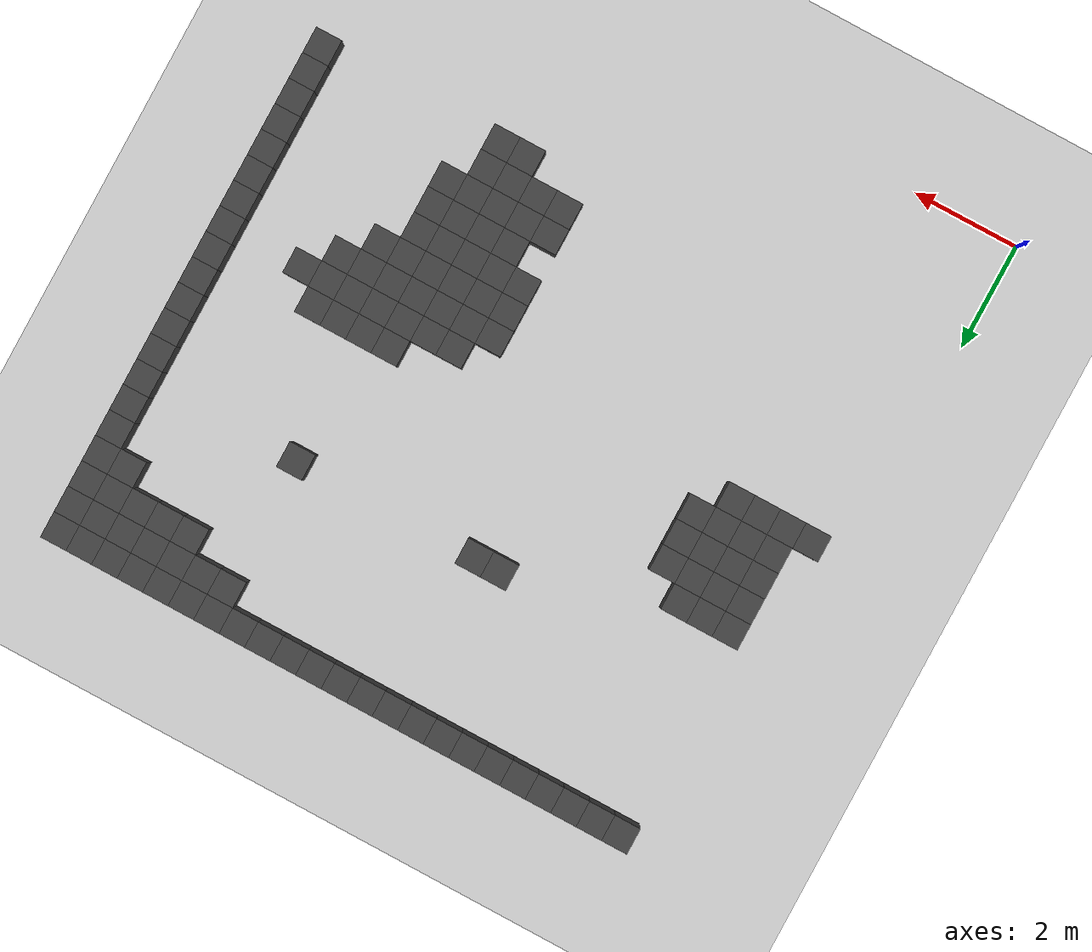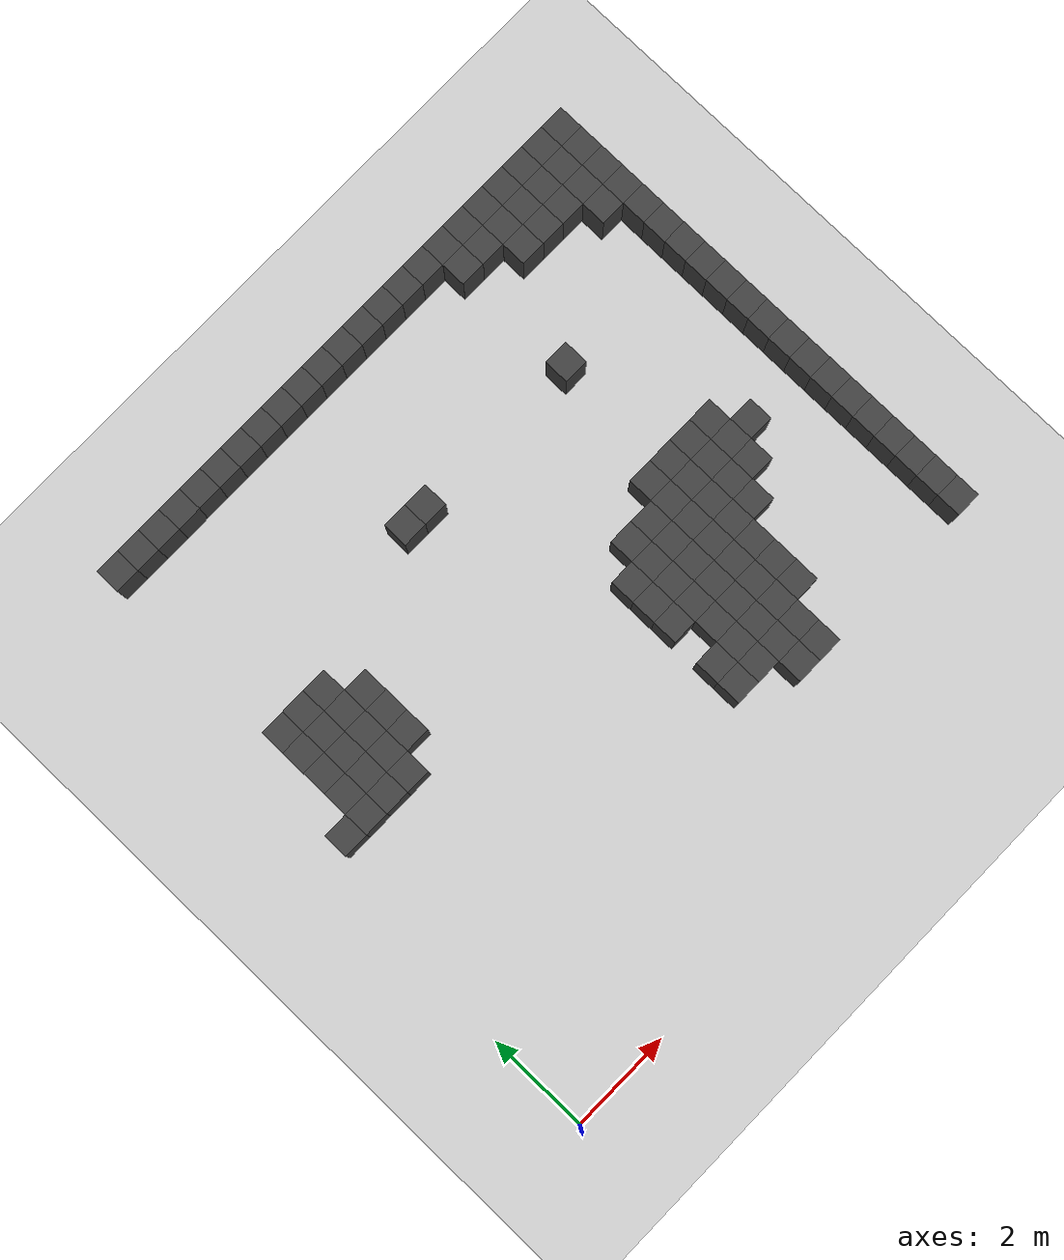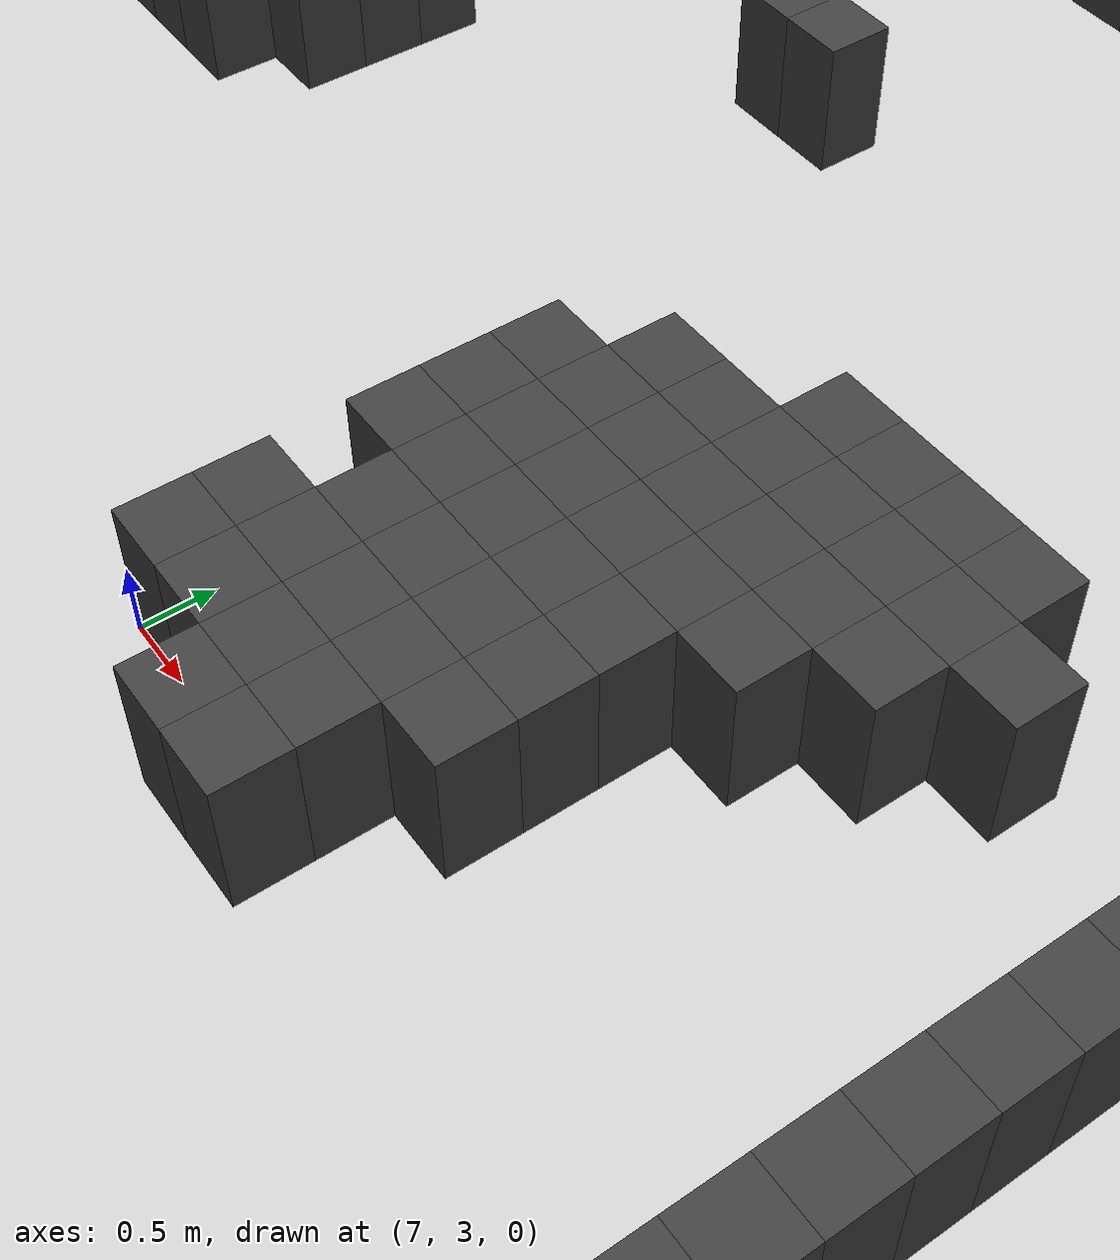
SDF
<sdf version="1.7">
 <world name="map_5836">
  <model name="ground_plane">
   <static>true</static>
   <link name="link">
    <collision name="collision">
     <geometry><plane><normal>0 0 1</normal><size>200 200</size></plane></geometry>
    </collision>
    <visual name="visual">
     <geometry><plane><normal>0 0 1</normal><size>200 200</size></plane></geometry>
     <material><ambient>0.8 0.8 0.8 1</ambient><diffuse>0.8 0.8 0.8 1</diffuse></material>
    </visual>
   </link>
  </model>
  <model name="maze_environment">
   <static>true</static>
   <link name="wall_27">
    <pose>1.250 12.250 0.500 0 0 0</pose>
    <collision name="col"><geometry><box><size>0.5 0.5 1.0</size></box></geometry></collision>
    <visual name="vis">
     <geometry><box><size>0.5 0.5 1.0</size></box></geometry>
     <material><ambient>0.15 0.15 0.15 1</ambient><diffuse>0.25 0.25 0.25 1</diffuse></material>
    </visual>
   </link>
   <link name="wall_28">
    <pose>1.750 12.250 0.500 0 0 0</pose>
    <collision name="col"><geometry><box><size>0.5 0.5 1.0</size></box></geometry></collision>
    <visual name="vis">
     <geometry><box><size>0.5 0.5 1.0</size></box></geometry>
     <material><ambient>0.15 0.15 0.15 1</ambient><diffuse>0.25 0.25 0.25 1</diffuse></material>
    </visual>
   </link>
   <link name="wall_29">
    <pose>2.250 12.250 0.500 0 0 0</pose>
    <collision name="col"><geometry><box><size>0.5 0.5 1.0</size></box></geometry></collision>
    <visual name="vis">
     <geometry><box><size>0.5 0.5 1.0</size></box></geometry>
     <material><ambient>0.15 0.15 0.15 1</ambient><diffuse>0.25 0.25 0.25 1</diffuse></material>
    </visual>
   </link>
   <link name="wall_30">
    <pose>2.750 12.250 0.500 0 0 0</pose>
    <collision name="col"><geometry><box><size>0.5 0.5 1.0</size></box></geometry></collision>
    <visual name="vis">
     <geometry><box><size>0.5 0.5 1.0</size></box></geometry>
     <material><ambient>0.15 0.15 0.15 1</ambient><diffuse>0.25 0.25 0.25 1</diffuse></material>
    </visual>
   </link>
   <link name="wall_31">
    <pose>3.250 12.250 0.500 0 0 0</pose>
    <collision name="col"><geometry><box><size>0.5 0.5 1.0</size></box></geometry></collision>
    <visual name="vis">
     <geometry><box><size>0.5 0.5 1.0</size></box></geometry>
     <material><ambient>0.15 0.15 0.15 1</ambient><diffuse>0.25 0.25 0.25 1</diffuse></material>
    </visual>
   </link>
   <link name="wall_32">
    <pose>3.750 12.250 0.500 0 0 0</pose>
    <collision name="col"><geometry><box><size>0.5 0.5 1.0</size></box></geometry></collision>
    <visual name="vis">
     <geometry><box><size>0.5 0.5 1.0</size></box></geometry>
     <material><ambient>0.15 0.15 0.15 1</ambient><diffuse>0.25 0.25 0.25 1</diffuse></material>
    </visual>
   </link>
   <link name="wall_33">
    <pose>4.250 12.250 0.500 0 0 0</pose>
    <collision name="col"><geometry><box><size>0.5 0.5 1.0</size></box></geometry></collision>
    <visual name="vis">
     <geometry><box><size>0.5 0.5 1.0</size></box></geometry>
     <material><ambient>0.15 0.15 0.15 1</ambient><diffuse>0.25 0.25 0.25 1</diffuse></material>
    </visual>
   </link>
   <link name="wall_34">
    <pose>4.750 12.250 0.500 0 0 0</pose>
    <collision name="col"><geometry><box><size>0.5 0.5 1.0</size></box></geometry></collision>
    <visual name="vis">
     <geometry><box><size>0.5 0.5 1.0</size></box></geometry>
     <material><ambient>0.15 0.15 0.15 1</ambient><diffuse>0.25 0.25 0.25 1</diffuse></material>
    </visual>
   </link>
   <link name="wall_35">
    <pose>5.250 12.250 0.500 0 0 0</pose>
    <collision name="col"><geometry><box><size>0.5 0.5 1.0</size></box></geometry></collision>
    <visual name="vis">
     <geometry><box><size>0.5 0.5 1.0</size></box></geometry>
     <material><ambient>0.15 0.15 0.15 1</ambient><diffuse>0.25 0.25 0.25 1</diffuse></material>
    </visual>
   </link>
   <link name="wall_36">
    <pose>5.750 12.250 0.500 0 0 0</pose>
    <collision name="col"><geometry><box><size>0.5 0.5 1.0</size></box></geometry></collision>
    <visual name="vis">
     <geometry><box><size>0.5 0.5 1.0</size></box></geometry>
     <material><ambient>0.15 0.15 0.15 1</ambient><diffuse>0.25 0.25 0.25 1</diffuse></material>
    </visual>
   </link>
   <link name="wall_37">
    <pose>6.250 12.250 0.500 0 0 0</pose>
    <collision name="col"><geometry><box><size>0.5 0.5 1.0</size></box></geometry></collision>
    <visual name="vis">
     <geometry><box><size>0.5 0.5 1.0</size></box></geometry>
     <material><ambient>0.15 0.15 0.15 1</ambient><diffuse>0.25 0.25 0.25 1</diffuse></material>
    </visual>
   </link>
   <link name="wall_38">
    <pose>6.750 12.250 0.500 0 0 0</pose>
    <collision name="col"><geometry><box><size>0.5 0.5 1.0</size></box></geometry></collision>
    <visual name="vis">
     <geometry><box><size>0.5 0.5 1.0</size></box></geometry>
     <material><ambient>0.15 0.15 0.15 1</ambient><diffuse>0.25 0.25 0.25 1</diffuse></material>
    </visual>
   </link>
   <link name="wall_39">
    <pose>7.250 12.250 0.500 0 0 0</pose>
    <collision name="col"><geometry><box><size>0.5 0.5 1.0</size></box></geometry></collision>
    <visual name="vis">
     <geometry><box><size>0.5 0.5 1.0</size></box></geometry>
     <material><ambient>0.15 0.15 0.15 1</ambient><diffuse>0.25 0.25 0.25 1</diffuse></material>
    </visual>
   </link>
   <link name="wall_40">
    <pose>7.750 12.250 0.500 0 0 0</pose>
    <collision name="col"><geometry><box><size>0.5 0.5 1.0</size></box></geometry></collision>
    <visual name="vis">
     <geometry><box><size>0.5 0.5 1.0</size></box></geometry>
     <material><ambient>0.15 0.15 0.15 1</ambient><diffuse>0.25 0.25 0.25 1</diffuse></material>
    </visual>
   </link>
   <link name="wall_41">
    <pose>8.250 12.250 0.500 0 0 0</pose>
    <collision name="col"><geometry><box><size>0.5 0.5 1.0</size></box></geometry></collision>
    <visual name="vis">
     <geometry><box><size>0.5 0.5 1.0</size></box></geometry>
     <material><ambient>0.15 0.15 0.15 1</ambient><diffuse>0.25 0.25 0.25 1</diffuse></material>
    </visual>
   </link>
   <link name="wall_42">
    <pose>8.750 12.250 0.500 0 0 0</pose>
    <collision name="col"><geometry><box><size>0.5 0.5 1.0</size></box></geometry></collision>
    <visual name="vis">
     <geometry><box><size>0.5 0.5 1.0</size></box></geometry>
     <material><ambient>0.15 0.15 0.15 1</ambient><diffuse>0.25 0.25 0.25 1</diffuse></material>
    </visual>
   </link>
   <link name="wall_43">
    <pose>9.250 12.250 0.500 0 0 0</pose>
    <collision name="col"><geometry><box><size>0.5 0.5 1.0</size></box></geometry></collision>
    <visual name="vis">
     <geometry><box><size>0.5 0.5 1.0</size></box></geometry>
     <material><ambient>0.15 0.15 0.15 1</ambient><diffuse>0.25 0.25 0.25 1</diffuse></material>
    </visual>
   </link>
   <link name="wall_44">
    <pose>9.750 12.250 0.500 0 0 0</pose>
    <collision name="col"><geometry><box><size>0.5 0.5 1.0</size></box></geometry></collision>
    <visual name="vis">
     <geometry><box><size>0.5 0.5 1.0</size></box></geometry>
     <material><ambient>0.15 0.15 0.15 1</ambient><diffuse>0.25 0.25 0.25 1</diffuse></material>
    </visual>
   </link>
   <link name="wall_45">
    <pose>10.250 12.250 0.500 0 0 0</pose>
    <collision name="col"><geometry><box><size>0.5 0.5 1.0</size></box></geometry></collision>
    <visual name="vis">
     <geometry><box><size>0.5 0.5 1.0</size></box></geometry>
     <material><ambient>0.15 0.15 0.15 1</ambient><diffuse>0.25 0.25 0.25 1</diffuse></material>
    </visual>
   </link>
   <link name="wall_46">
    <pose>10.750 12.250 0.500 0 0 0</pose>
    <collision name="col"><geometry><box><size>0.5 0.5 1.0</size></box></geometry></collision>
    <visual name="vis">
     <geometry><box><size>0.5 0.5 1.0</size></box></geometry>
     <material><ambient>0.15 0.15 0.15 1</ambient><diffuse>0.25 0.25 0.25 1</diffuse></material>
    </visual>
   </link>
   <link name="wall_47">
    <pose>11.250 12.250 0.500 0 0 0</pose>
    <collision name="col"><geometry><box><size>0.5 0.5 1.0</size></box></geometry></collision>
    <visual name="vis">
     <geometry><box><size>0.5 0.5 1.0</size></box></geometry>
     <material><ambient>0.15 0.15 0.15 1</ambient><diffuse>0.25 0.25 0.25 1</diffuse></material>
    </visual>
   </link>
   <link name="wall_48">
    <pose>11.750 12.250 0.500 0 0 0</pose>
    <collision name="col"><geometry><box><size>0.5 0.5 1.0</size></box></geometry></collision>
    <visual name="vis">
     <geometry><box><size>0.5 0.5 1.0</size></box></geometry>
     <material><ambient>0.15 0.15 0.15 1</ambient><diffuse>0.25 0.25 0.25 1</diffuse></material>
    </visual>
   </link>
   <link name="wall_49">
    <pose>12.250 12.250 0.500 0 0 0</pose>
    <collision name="col"><geometry><box><size>0.5 0.5 1.0</size></box></geometry></collision>
    <visual name="vis">
     <geometry><box><size>0.5 0.5 1.0</size></box></geometry>
     <material><ambient>0.15 0.15 0.15 1</ambient><diffuse>0.25 0.25 0.25 1</diffuse></material>
    </visual>
   </link>
   <link name="wall_65">
    <pose>9.250 11.750 0.500 0 0 0</pose>
    <collision name="col"><geometry><box><size>0.5 0.5 1.0</size></box></geometry></collision>
    <visual name="vis">
     <geometry><box><size>0.5 0.5 1.0</size></box></geometry>
     <material><ambient>0.15 0.15 0.15 1</ambient><diffuse>0.25 0.25 0.25 1</diffuse></material>
    </visual>
   </link>
   <link name="wall_66">
    <pose>9.750 11.750 0.500 0 0 0</pose>
    <collision name="col"><geometry><box><size>0.5 0.5 1.0</size></box></geometry></collision>
    <visual name="vis">
     <geometry><box><size>0.5 0.5 1.0</size></box></geometry>
     <material><ambient>0.15 0.15 0.15 1</ambient><diffuse>0.25 0.25 0.25 1</diffuse></material>
    </visual>
   </link>
   <link name="wall_67">
    <pose>10.250 11.750 0.500 0 0 0</pose>
    <collision name="col"><geometry><box><size>0.5 0.5 1.0</size></box></geometry></collision>
    <visual name="vis">
     <geometry><box><size>0.5 0.5 1.0</size></box></geometry>
     <material><ambient>0.15 0.15 0.15 1</ambient><diffuse>0.25 0.25 0.25 1</diffuse></material>
    </visual>
   </link>
   <link name="wall_68">
    <pose>10.750 11.750 0.500 0 0 0</pose>
    <collision name="col"><geometry><box><size>0.5 0.5 1.0</size></box></geometry></collision>
    <visual name="vis">
     <geometry><box><size>0.5 0.5 1.0</size></box></geometry>
     <material><ambient>0.15 0.15 0.15 1</ambient><diffuse>0.25 0.25 0.25 1</diffuse></material>
    </visual>
   </link>
   <link name="wall_69">
    <pose>11.250 11.750 0.500 0 0 0</pose>
    <collision name="col"><geometry><box><size>0.5 0.5 1.0</size></box></geometry></collision>
    <visual name="vis">
     <geometry><box><size>0.5 0.5 1.0</size></box></geometry>
     <material><ambient>0.15 0.15 0.15 1</ambient><diffuse>0.25 0.25 0.25 1</diffuse></material>
    </visual>
   </link>
   <link name="wall_70">
    <pose>11.750 11.750 0.500 0 0 0</pose>
    <collision name="col"><geometry><box><size>0.5 0.5 1.0</size></box></geometry></collision>
    <visual name="vis">
     <geometry><box><size>0.5 0.5 1.0</size></box></geometry>
     <material><ambient>0.15 0.15 0.15 1</ambient><diffuse>0.25 0.25 0.25 1</diffuse></material>
    </visual>
   </link>
   <link name="wall_71">
    <pose>12.250 11.750 0.500 0 0 0</pose>
    <collision name="col"><geometry><box><size>0.5 0.5 1.0</size></box></geometry></collision>
    <visual name="vis">
     <geometry><box><size>0.5 0.5 1.0</size></box></geometry>
     <material><ambient>0.15 0.15 0.15 1</ambient><diffuse>0.25 0.25 0.25 1</diffuse></material>
    </visual>
   </link>
   <link name="wall_78">
    <pose>10.250 11.250 0.500 0 0 0</pose>
    <collision name="col"><geometry><box><size>0.5 0.5 1.0</size></box></geometry></collision>
    <visual name="vis">
     <geometry><box><size>0.5 0.5 1.0</size></box></geometry>
     <material><ambient>0.15 0.15 0.15 1</ambient><diffuse>0.25 0.25 0.25 1</diffuse></material>
    </visual>
   </link>
   <link name="wall_79">
    <pose>10.750 11.250 0.500 0 0 0</pose>
    <collision name="col"><geometry><box><size>0.5 0.5 1.0</size></box></geometry></collision>
    <visual name="vis">
     <geometry><box><size>0.5 0.5 1.0</size></box></geometry>
     <material><ambient>0.15 0.15 0.15 1</ambient><diffuse>0.25 0.25 0.25 1</diffuse></material>
    </visual>
   </link>
   <link name="wall_80">
    <pose>11.250 11.250 0.500 0 0 0</pose>
    <collision name="col"><geometry><box><size>0.5 0.5 1.0</size></box></geometry></collision>
    <visual name="vis">
     <geometry><box><size>0.5 0.5 1.0</size></box></geometry>
     <material><ambient>0.15 0.15 0.15 1</ambient><diffuse>0.25 0.25 0.25 1</diffuse></material>
    </visual>
   </link>
   <link name="wall_81">
    <pose>11.750 11.250 0.500 0 0 0</pose>
    <collision name="col"><geometry><box><size>0.5 0.5 1.0</size></box></geometry></collision>
    <visual name="vis">
     <geometry><box><size>0.5 0.5 1.0</size></box></geometry>
     <material><ambient>0.15 0.15 0.15 1</ambient><diffuse>0.25 0.25 0.25 1</diffuse></material>
    </visual>
   </link>
   <link name="wall_82">
    <pose>12.250 11.250 0.500 0 0 0</pose>
    <collision name="col"><geometry><box><size>0.5 0.5 1.0</size></box></geometry></collision>
    <visual name="vis">
     <geometry><box><size>0.5 0.5 1.0</size></box></geometry>
     <material><ambient>0.15 0.15 0.15 1</ambient><diffuse>0.25 0.25 0.25 1</diffuse></material>
    </visual>
   </link>
   <link name="wall_87">
    <pose>11.750 10.750 0.500 0 0 0</pose>
    <collision name="col"><geometry><box><size>0.5 0.5 1.0</size></box></geometry></collision>
    <visual name="vis">
     <geometry><box><size>0.5 0.5 1.0</size></box></geometry>
     <material><ambient>0.15 0.15 0.15 1</ambient><diffuse>0.25 0.25 0.25 1</diffuse></material>
    </visual>
   </link>
   <link name="wall_88">
    <pose>12.250 10.750 0.500 0 0 0</pose>
    <collision name="col"><geometry><box><size>0.5 0.5 1.0</size></box></geometry></collision>
    <visual name="vis">
     <geometry><box><size>0.5 0.5 1.0</size></box></geometry>
     <material><ambient>0.15 0.15 0.15 1</ambient><diffuse>0.25 0.25 0.25 1</diffuse></material>
    </visual>
   </link>
   <link name="wall_94">
    <pose>12.250 10.250 0.500 0 0 0</pose>
    <collision name="col"><geometry><box><size>0.5 0.5 1.0</size></box></geometry></collision>
    <visual name="vis">
     <geometry><box><size>0.5 0.5 1.0</size></box></geometry>
     <material><ambient>0.15 0.15 0.15 1</ambient><diffuse>0.25 0.25 0.25 1</diffuse></material>
    </visual>
   </link>
   <link name="wall_101">
    <pose>12.250 9.750 0.500 0 0 0</pose>
    <collision name="col"><geometry><box><size>0.5 0.5 1.0</size></box></geometry></collision>
    <visual name="vis">
     <geometry><box><size>0.5 0.5 1.0</size></box></geometry>
     <material><ambient>0.15 0.15 0.15 1</ambient><diffuse>0.25 0.25 0.25 1</diffuse></material>
    </visual>
   </link>
   <link name="wall_107">
    <pose>5.250 9.250 0.500 0 0 0</pose>
    <collision name="col"><geometry><box><size>0.5 0.5 1.0</size></box></geometry></collision>
    <visual name="vis">
     <geometry><box><size>0.5 0.5 1.0</size></box></geometry>
     <material><ambient>0.15 0.15 0.15 1</ambient><diffuse>0.25 0.25 0.25 1</diffuse></material>
    </visual>
   </link>
   <link name="wall_108">
    <pose>5.750 9.250 0.500 0 0 0</pose>
    <collision name="col"><geometry><box><size>0.5 0.5 1.0</size></box></geometry></collision>
    <visual name="vis">
     <geometry><box><size>0.5 0.5 1.0</size></box></geometry>
     <material><ambient>0.15 0.15 0.15 1</ambient><diffuse>0.25 0.25 0.25 1</diffuse></material>
    </visual>
   </link>
   <link name="wall_109">
    <pose>9.250 9.250 0.500 0 0 0</pose>
    <collision name="col"><geometry><box><size>0.5 0.5 1.0</size></box></geometry></collision>
    <visual name="vis">
     <geometry><box><size>0.5 0.5 1.0</size></box></geometry>
     <material><ambient>0.15 0.15 0.15 1</ambient><diffuse>0.25 0.25 0.25 1</diffuse></material>
    </visual>
   </link>
   <link name="wall_110">
    <pose>12.250 9.250 0.500 0 0 0</pose>
    <collision name="col"><geometry><box><size>0.5 0.5 1.0</size></box></geometry></collision>
    <visual name="vis">
     <geometry><box><size>0.5 0.5 1.0</size></box></geometry>
     <material><ambient>0.15 0.15 0.15 1</ambient><diffuse>0.25 0.25 0.25 1</diffuse></material>
    </visual>
   </link>
   <link name="wall_117">
    <pose>12.250 8.750 0.500 0 0 0</pose>
    <collision name="col"><geometry><box><size>0.5 0.5 1.0</size></box></geometry></collision>
    <visual name="vis">
     <geometry><box><size>0.5 0.5 1.0</size></box></geometry>
     <material><ambient>0.15 0.15 0.15 1</ambient><diffuse>0.25 0.25 0.25 1</diffuse></material>
    </visual>
   </link>
   <link name="wall_123">
    <pose>1.250 8.250 0.500 0 0 0</pose>
    <collision name="col"><geometry><box><size>0.5 0.5 1.0</size></box></geometry></collision>
    <visual name="vis">
     <geometry><box><size>0.5 0.5 1.0</size></box></geometry>
     <material><ambient>0.15 0.15 0.15 1</ambient><diffuse>0.25 0.25 0.25 1</diffuse></material>
    </visual>
   </link>
   <link name="wall_124">
    <pose>1.750 8.250 0.500 0 0 0</pose>
    <collision name="col"><geometry><box><size>0.5 0.5 1.0</size></box></geometry></collision>
    <visual name="vis">
     <geometry><box><size>0.5 0.5 1.0</size></box></geometry>
     <material><ambient>0.15 0.15 0.15 1</ambient><diffuse>0.25 0.25 0.25 1</diffuse></material>
    </visual>
   </link>
   <link name="wall_125">
    <pose>2.250 8.250 0.500 0 0 0</pose>
    <collision name="col"><geometry><box><size>0.5 0.5 1.0</size></box></geometry></collision>
    <visual name="vis">
     <geometry><box><size>0.5 0.5 1.0</size></box></geometry>
     <material><ambient>0.15 0.15 0.15 1</ambient><diffuse>0.25 0.25 0.25 1</diffuse></material>
    </visual>
   </link>
   <link name="wall_126">
    <pose>12.250 8.250 0.500 0 0 0</pose>
    <collision name="col"><geometry><box><size>0.5 0.5 1.0</size></box></geometry></collision>
    <visual name="vis">
     <geometry><box><size>0.5 0.5 1.0</size></box></geometry>
     <material><ambient>0.15 0.15 0.15 1</ambient><diffuse>0.25 0.25 0.25 1</diffuse></material>
    </visual>
   </link>
   <link name="wall_134">
    <pose>1.250 7.750 0.500 0 0 0</pose>
    <collision name="col"><geometry><box><size>0.5 0.5 1.0</size></box></geometry></collision>
    <visual name="vis">
     <geometry><box><size>0.5 0.5 1.0</size></box></geometry>
     <material><ambient>0.15 0.15 0.15 1</ambient><diffuse>0.25 0.25 0.25 1</diffuse></material>
    </visual>
   </link>
   <link name="wall_135">
    <pose>1.750 7.750 0.500 0 0 0</pose>
    <collision name="col"><geometry><box><size>0.5 0.5 1.0</size></box></geometry></collision>
    <visual name="vis">
     <geometry><box><size>0.5 0.5 1.0</size></box></geometry>
     <material><ambient>0.15 0.15 0.15 1</ambient><diffuse>0.25 0.25 0.25 1</diffuse></material>
    </visual>
   </link>
   <link name="wall_136">
    <pose>2.250 7.750 0.500 0 0 0</pose>
    <collision name="col"><geometry><box><size>0.5 0.5 1.0</size></box></geometry></collision>
    <visual name="vis">
     <geometry><box><size>0.5 0.5 1.0</size></box></geometry>
     <material><ambient>0.15 0.15 0.15 1</ambient><diffuse>0.25 0.25 0.25 1</diffuse></material>
    </visual>
   </link>
   <link name="wall_137">
    <pose>2.750 7.750 0.500 0 0 0</pose>
    <collision name="col"><geometry><box><size>0.5 0.5 1.0</size></box></geometry></collision>
    <visual name="vis">
     <geometry><box><size>0.5 0.5 1.0</size></box></geometry>
     <material><ambient>0.15 0.15 0.15 1</ambient><diffuse>0.25 0.25 0.25 1</diffuse></material>
    </visual>
   </link>
   <link name="wall_138">
    <pose>12.250 7.750 0.500 0 0 0</pose>
    <collision name="col"><geometry><box><size>0.5 0.5 1.0</size></box></geometry></collision>
    <visual name="vis">
     <geometry><box><size>0.5 0.5 1.0</size></box></geometry>
     <material><ambient>0.15 0.15 0.15 1</ambient><diffuse>0.25 0.25 0.25 1</diffuse></material>
    </visual>
   </link>
   <link name="wall_145">
    <pose>1.250 7.250 0.500 0 0 0</pose>
    <collision name="col"><geometry><box><size>0.5 0.5 1.0</size></box></geometry></collision>
    <visual name="vis">
     <geometry><box><size>0.5 0.5 1.0</size></box></geometry>
     <material><ambient>0.15 0.15 0.15 1</ambient><diffuse>0.25 0.25 0.25 1</diffuse></material>
    </visual>
   </link>
   <link name="wall_146">
    <pose>1.750 7.250 0.500 0 0 0</pose>
    <collision name="col"><geometry><box><size>0.5 0.5 1.0</size></box></geometry></collision>
    <visual name="vis">
     <geometry><box><size>0.5 0.5 1.0</size></box></geometry>
     <material><ambient>0.15 0.15 0.15 1</ambient><diffuse>0.25 0.25 0.25 1</diffuse></material>
    </visual>
   </link>
   <link name="wall_147">
    <pose>2.250 7.250 0.500 0 0 0</pose>
    <collision name="col"><geometry><box><size>0.5 0.5 1.0</size></box></geometry></collision>
    <visual name="vis">
     <geometry><box><size>0.5 0.5 1.0</size></box></geometry>
     <material><ambient>0.15 0.15 0.15 1</ambient><diffuse>0.25 0.25 0.25 1</diffuse></material>
    </visual>
   </link>
   <link name="wall_148">
    <pose>2.750 7.250 0.500 0 0 0</pose>
    <collision name="col"><geometry><box><size>0.5 0.5 1.0</size></box></geometry></collision>
    <visual name="vis">
     <geometry><box><size>0.5 0.5 1.0</size></box></geometry>
     <material><ambient>0.15 0.15 0.15 1</ambient><diffuse>0.25 0.25 0.25 1</diffuse></material>
    </visual>
   </link>
   <link name="wall_149">
    <pose>12.250 7.250 0.500 0 0 0</pose>
    <collision name="col"><geometry><box><size>0.5 0.5 1.0</size></box></geometry></collision>
    <visual name="vis">
     <geometry><box><size>0.5 0.5 1.0</size></box></geometry>
     <material><ambient>0.15 0.15 0.15 1</ambient><diffuse>0.25 0.25 0.25 1</diffuse></material>
    </visual>
   </link>
   <link name="wall_153">
    <pose>1.250 6.750 0.500 0 0 0</pose>
    <collision name="col"><geometry><box><size>0.5 0.5 1.0</size></box></geometry></collision>
    <visual name="vis">
     <geometry><box><size>0.5 0.5 1.0</size></box></geometry>
     <material><ambient>0.15 0.15 0.15 1</ambient><diffuse>0.25 0.25 0.25 1</diffuse></material>
    </visual>
   </link>
   <link name="wall_154">
    <pose>1.750 6.750 0.500 0 0 0</pose>
    <collision name="col"><geometry><box><size>0.5 0.5 1.0</size></box></geometry></collision>
    <visual name="vis">
     <geometry><box><size>0.5 0.5 1.0</size></box></geometry>
     <material><ambient>0.15 0.15 0.15 1</ambient><diffuse>0.25 0.25 0.25 1</diffuse></material>
    </visual>
   </link>
   <link name="wall_155">
    <pose>2.250 6.750 0.500 0 0 0</pose>
    <collision name="col"><geometry><box><size>0.5 0.5 1.0</size></box></geometry></collision>
    <visual name="vis">
     <geometry><box><size>0.5 0.5 1.0</size></box></geometry>
     <material><ambient>0.15 0.15 0.15 1</ambient><diffuse>0.25 0.25 0.25 1</diffuse></material>
    </visual>
   </link>
   <link name="wall_156">
    <pose>2.750 6.750 0.500 0 0 0</pose>
    <collision name="col"><geometry><box><size>0.5 0.5 1.0</size></box></geometry></collision>
    <visual name="vis">
     <geometry><box><size>0.5 0.5 1.0</size></box></geometry>
     <material><ambient>0.15 0.15 0.15 1</ambient><diffuse>0.25 0.25 0.25 1</diffuse></material>
    </visual>
   </link>
   <link name="wall_157">
    <pose>8.750 6.750 0.500 0 0 0</pose>
    <collision name="col"><geometry><box><size>0.5 0.5 1.0</size></box></geometry></collision>
    <visual name="vis">
     <geometry><box><size>0.5 0.5 1.0</size></box></geometry>
     <material><ambient>0.15 0.15 0.15 1</ambient><diffuse>0.25 0.25 0.25 1</diffuse></material>
    </visual>
   </link>
   <link name="wall_158">
    <pose>9.250 6.750 0.500 0 0 0</pose>
    <collision name="col"><geometry><box><size>0.5 0.5 1.0</size></box></geometry></collision>
    <visual name="vis">
     <geometry><box><size>0.5 0.5 1.0</size></box></geometry>
     <material><ambient>0.15 0.15 0.15 1</ambient><diffuse>0.25 0.25 0.25 1</diffuse></material>
    </visual>
   </link>
   <link name="wall_159">
    <pose>9.750 6.750 0.500 0 0 0</pose>
    <collision name="col"><geometry><box><size>0.5 0.5 1.0</size></box></geometry></collision>
    <visual name="vis">
     <geometry><box><size>0.5 0.5 1.0</size></box></geometry>
     <material><ambient>0.15 0.15 0.15 1</ambient><diffuse>0.25 0.25 0.25 1</diffuse></material>
    </visual>
   </link>
   <link name="wall_160">
    <pose>10.250 6.750 0.500 0 0 0</pose>
    <collision name="col"><geometry><box><size>0.5 0.5 1.0</size></box></geometry></collision>
    <visual name="vis">
     <geometry><box><size>0.5 0.5 1.0</size></box></geometry>
     <material><ambient>0.15 0.15 0.15 1</ambient><diffuse>0.25 0.25 0.25 1</diffuse></material>
    </visual>
   </link>
   <link name="wall_161">
    <pose>12.250 6.750 0.500 0 0 0</pose>
    <collision name="col"><geometry><box><size>0.5 0.5 1.0</size></box></geometry></collision>
    <visual name="vis">
     <geometry><box><size>0.5 0.5 1.0</size></box></geometry>
     <material><ambient>0.15 0.15 0.15 1</ambient><diffuse>0.25 0.25 0.25 1</diffuse></material>
    </visual>
   </link>
   <link name="wall_163">
    <pose>0.750 6.250 0.500 0 0 0</pose>
    <collision name="col"><geometry><box><size>0.5 0.5 1.0</size></box></geometry></collision>
    <visual name="vis">
     <geometry><box><size>0.5 0.5 1.0</size></box></geometry>
     <material><ambient>0.15 0.15 0.15 1</ambient><diffuse>0.25 0.25 0.25 1</diffuse></material>
    </visual>
   </link>
   <link name="wall_164">
    <pose>1.250 6.250 0.500 0 0 0</pose>
    <collision name="col"><geometry><box><size>0.5 0.5 1.0</size></box></geometry></collision>
    <visual name="vis">
     <geometry><box><size>0.5 0.5 1.0</size></box></geometry>
     <material><ambient>0.15 0.15 0.15 1</ambient><diffuse>0.25 0.25 0.25 1</diffuse></material>
    </visual>
   </link>
   <link name="wall_165">
    <pose>1.750 6.250 0.500 0 0 0</pose>
    <collision name="col"><geometry><box><size>0.5 0.5 1.0</size></box></geometry></collision>
    <visual name="vis">
     <geometry><box><size>0.5 0.5 1.0</size></box></geometry>
     <material><ambient>0.15 0.15 0.15 1</ambient><diffuse>0.25 0.25 0.25 1</diffuse></material>
    </visual>
   </link>
   <link name="wall_166">
    <pose>2.250 6.250 0.500 0 0 0</pose>
    <collision name="col"><geometry><box><size>0.5 0.5 1.0</size></box></geometry></collision>
    <visual name="vis">
     <geometry><box><size>0.5 0.5 1.0</size></box></geometry>
     <material><ambient>0.15 0.15 0.15 1</ambient><diffuse>0.25 0.25 0.25 1</diffuse></material>
    </visual>
   </link>
   <link name="wall_167">
    <pose>7.750 6.250 0.500 0 0 0</pose>
    <collision name="col"><geometry><box><size>0.5 0.5 1.0</size></box></geometry></collision>
    <visual name="vis">
     <geometry><box><size>0.5 0.5 1.0</size></box></geometry>
     <material><ambient>0.15 0.15 0.15 1</ambient><diffuse>0.25 0.25 0.25 1</diffuse></material>
    </visual>
   </link>
   <link name="wall_168">
    <pose>8.250 6.250 0.500 0 0 0</pose>
    <collision name="col"><geometry><box><size>0.5 0.5 1.0</size></box></geometry></collision>
    <visual name="vis">
     <geometry><box><size>0.5 0.5 1.0</size></box></geometry>
     <material><ambient>0.15 0.15 0.15 1</ambient><diffuse>0.25 0.25 0.25 1</diffuse></material>
    </visual>
   </link>
   <link name="wall_169">
    <pose>8.750 6.250 0.500 0 0 0</pose>
    <collision name="col"><geometry><box><size>0.5 0.5 1.0</size></box></geometry></collision>
    <visual name="vis">
     <geometry><box><size>0.5 0.5 1.0</size></box></geometry>
     <material><ambient>0.15 0.15 0.15 1</ambient><diffuse>0.25 0.25 0.25 1</diffuse></material>
    </visual>
   </link>
   <link name="wall_170">
    <pose>9.250 6.250 0.500 0 0 0</pose>
    <collision name="col"><geometry><box><size>0.5 0.5 1.0</size></box></geometry></collision>
    <visual name="vis">
     <geometry><box><size>0.5 0.5 1.0</size></box></geometry>
     <material><ambient>0.15 0.15 0.15 1</ambient><diffuse>0.25 0.25 0.25 1</diffuse></material>
    </visual>
   </link>
   <link name="wall_171">
    <pose>9.750 6.250 0.500 0 0 0</pose>
    <collision name="col"><geometry><box><size>0.5 0.5 1.0</size></box></geometry></collision>
    <visual name="vis">
     <geometry><box><size>0.5 0.5 1.0</size></box></geometry>
     <material><ambient>0.15 0.15 0.15 1</ambient><diffuse>0.25 0.25 0.25 1</diffuse></material>
    </visual>
   </link>
   <link name="wall_172">
    <pose>10.250 6.250 0.500 0 0 0</pose>
    <collision name="col"><geometry><box><size>0.5 0.5 1.0</size></box></geometry></collision>
    <visual name="vis">
     <geometry><box><size>0.5 0.5 1.0</size></box></geometry>
     <material><ambient>0.15 0.15 0.15 1</ambient><diffuse>0.25 0.25 0.25 1</diffuse></material>
    </visual>
   </link>
   <link name="wall_173">
    <pose>10.750 6.250 0.500 0 0 0</pose>
    <collision name="col"><geometry><box><size>0.5 0.5 1.0</size></box></geometry></collision>
    <visual name="vis">
     <geometry><box><size>0.5 0.5 1.0</size></box></geometry>
     <material><ambient>0.15 0.15 0.15 1</ambient><diffuse>0.25 0.25 0.25 1</diffuse></material>
    </visual>
   </link>
   <link name="wall_174">
    <pose>12.250 6.250 0.500 0 0 0</pose>
    <collision name="col"><geometry><box><size>0.5 0.5 1.0</size></box></geometry></collision>
    <visual name="vis">
     <geometry><box><size>0.5 0.5 1.0</size></box></geometry>
     <material><ambient>0.15 0.15 0.15 1</ambient><diffuse>0.25 0.25 0.25 1</diffuse></material>
    </visual>
   </link>
   <link name="wall_176">
    <pose>7.250 5.750 0.500 0 0 0</pose>
    <collision name="col"><geometry><box><size>0.5 0.5 1.0</size></box></geometry></collision>
    <visual name="vis">
     <geometry><box><size>0.5 0.5 1.0</size></box></geometry>
     <material><ambient>0.15 0.15 0.15 1</ambient><diffuse>0.25 0.25 0.25 1</diffuse></material>
    </visual>
   </link>
   <link name="wall_177">
    <pose>7.750 5.750 0.500 0 0 0</pose>
    <collision name="col"><geometry><box><size>0.5 0.5 1.0</size></box></geometry></collision>
    <visual name="vis">
     <geometry><box><size>0.5 0.5 1.0</size></box></geometry>
     <material><ambient>0.15 0.15 0.15 1</ambient><diffuse>0.25 0.25 0.25 1</diffuse></material>
    </visual>
   </link>
   <link name="wall_178">
    <pose>8.250 5.750 0.500 0 0 0</pose>
    <collision name="col"><geometry><box><size>0.5 0.5 1.0</size></box></geometry></collision>
    <visual name="vis">
     <geometry><box><size>0.5 0.5 1.0</size></box></geometry>
     <material><ambient>0.15 0.15 0.15 1</ambient><diffuse>0.25 0.25 0.25 1</diffuse></material>
    </visual>
   </link>
   <link name="wall_179">
    <pose>8.750 5.750 0.500 0 0 0</pose>
    <collision name="col"><geometry><box><size>0.5 0.5 1.0</size></box></geometry></collision>
    <visual name="vis">
     <geometry><box><size>0.5 0.5 1.0</size></box></geometry>
     <material><ambient>0.15 0.15 0.15 1</ambient><diffuse>0.25 0.25 0.25 1</diffuse></material>
    </visual>
   </link>
   <link name="wall_180">
    <pose>9.250 5.750 0.500 0 0 0</pose>
    <collision name="col"><geometry><box><size>0.5 0.5 1.0</size></box></geometry></collision>
    <visual name="vis">
     <geometry><box><size>0.5 0.5 1.0</size></box></geometry>
     <material><ambient>0.15 0.15 0.15 1</ambient><diffuse>0.25 0.25 0.25 1</diffuse></material>
    </visual>
   </link>
   <link name="wall_181">
    <pose>9.750 5.750 0.500 0 0 0</pose>
    <collision name="col"><geometry><box><size>0.5 0.5 1.0</size></box></geometry></collision>
    <visual name="vis">
     <geometry><box><size>0.5 0.5 1.0</size></box></geometry>
     <material><ambient>0.15 0.15 0.15 1</ambient><diffuse>0.25 0.25 0.25 1</diffuse></material>
    </visual>
   </link>
   <link name="wall_182">
    <pose>10.250 5.750 0.500 0 0 0</pose>
    <collision name="col"><geometry><box><size>0.5 0.5 1.0</size></box></geometry></collision>
    <visual name="vis">
     <geometry><box><size>0.5 0.5 1.0</size></box></geometry>
     <material><ambient>0.15 0.15 0.15 1</ambient><diffuse>0.25 0.25 0.25 1</diffuse></material>
    </visual>
   </link>
   <link name="wall_183">
    <pose>12.250 5.750 0.500 0 0 0</pose>
    <collision name="col"><geometry><box><size>0.5 0.5 1.0</size></box></geometry></collision>
    <visual name="vis">
     <geometry><box><size>0.5 0.5 1.0</size></box></geometry>
     <material><ambient>0.15 0.15 0.15 1</ambient><diffuse>0.25 0.25 0.25 1</diffuse></material>
    </visual>
   </link>
   <link name="wall_185">
    <pose>7.250 5.250 0.500 0 0 0</pose>
    <collision name="col"><geometry><box><size>0.5 0.5 1.0</size></box></geometry></collision>
    <visual name="vis">
     <geometry><box><size>0.5 0.5 1.0</size></box></geometry>
     <material><ambient>0.15 0.15 0.15 1</ambient><diffuse>0.25 0.25 0.25 1</diffuse></material>
    </visual>
   </link>
   <link name="wall_186">
    <pose>7.750 5.250 0.500 0 0 0</pose>
    <collision name="col"><geometry><box><size>0.5 0.5 1.0</size></box></geometry></collision>
    <visual name="vis">
     <geometry><box><size>0.5 0.5 1.0</size></box></geometry>
     <material><ambient>0.15 0.15 0.15 1</ambient><diffuse>0.25 0.25 0.25 1</diffuse></material>
    </visual>
   </link>
   <link name="wall_187">
    <pose>8.250 5.250 0.500 0 0 0</pose>
    <collision name="col"><geometry><box><size>0.5 0.5 1.0</size></box></geometry></collision>
    <visual name="vis">
     <geometry><box><size>0.5 0.5 1.0</size></box></geometry>
     <material><ambient>0.15 0.15 0.15 1</ambient><diffuse>0.25 0.25 0.25 1</diffuse></material>
    </visual>
   </link>
   <link name="wall_188">
    <pose>8.750 5.250 0.500 0 0 0</pose>
    <collision name="col"><geometry><box><size>0.5 0.5 1.0</size></box></geometry></collision>
    <visual name="vis">
     <geometry><box><size>0.5 0.5 1.0</size></box></geometry>
     <material><ambient>0.15 0.15 0.15 1</ambient><diffuse>0.25 0.25 0.25 1</diffuse></material>
    </visual>
   </link>
   <link name="wall_189">
    <pose>9.250 5.250 0.500 0 0 0</pose>
    <collision name="col"><geometry><box><size>0.5 0.5 1.0</size></box></geometry></collision>
    <visual name="vis">
     <geometry><box><size>0.5 0.5 1.0</size></box></geometry>
     <material><ambient>0.15 0.15 0.15 1</ambient><diffuse>0.25 0.25 0.25 1</diffuse></material>
    </visual>
   </link>
   <link name="wall_190">
    <pose>9.750 5.250 0.500 0 0 0</pose>
    <collision name="col"><geometry><box><size>0.5 0.5 1.0</size></box></geometry></collision>
    <visual name="vis">
     <geometry><box><size>0.5 0.5 1.0</size></box></geometry>
     <material><ambient>0.15 0.15 0.15 1</ambient><diffuse>0.25 0.25 0.25 1</diffuse></material>
    </visual>
   </link>
   <link name="wall_191">
    <pose>12.250 5.250 0.500 0 0 0</pose>
    <collision name="col"><geometry><box><size>0.5 0.5 1.0</size></box></geometry></collision>
    <visual name="vis">
     <geometry><box><size>0.5 0.5 1.0</size></box></geometry>
     <material><ambient>0.15 0.15 0.15 1</ambient><diffuse>0.25 0.25 0.25 1</diffuse></material>
    </visual>
   </link>
   <link name="wall_193">
    <pose>7.250 4.750 0.500 0 0 0</pose>
    <collision name="col"><geometry><box><size>0.5 0.5 1.0</size></box></geometry></collision>
    <visual name="vis">
     <geometry><box><size>0.5 0.5 1.0</size></box></geometry>
     <material><ambient>0.15 0.15 0.15 1</ambient><diffuse>0.25 0.25 0.25 1</diffuse></material>
    </visual>
   </link>
   <link name="wall_194">
    <pose>7.750 4.750 0.500 0 0 0</pose>
    <collision name="col"><geometry><box><size>0.5 0.5 1.0</size></box></geometry></collision>
    <visual name="vis">
     <geometry><box><size>0.5 0.5 1.0</size></box></geometry>
     <material><ambient>0.15 0.15 0.15 1</ambient><diffuse>0.25 0.25 0.25 1</diffuse></material>
    </visual>
   </link>
   <link name="wall_195">
    <pose>8.250 4.750 0.500 0 0 0</pose>
    <collision name="col"><geometry><box><size>0.5 0.5 1.0</size></box></geometry></collision>
    <visual name="vis">
     <geometry><box><size>0.5 0.5 1.0</size></box></geometry>
     <material><ambient>0.15 0.15 0.15 1</ambient><diffuse>0.25 0.25 0.25 1</diffuse></material>
    </visual>
   </link>
   <link name="wall_196">
    <pose>8.750 4.750 0.500 0 0 0</pose>
    <collision name="col"><geometry><box><size>0.5 0.5 1.0</size></box></geometry></collision>
    <visual name="vis">
     <geometry><box><size>0.5 0.5 1.0</size></box></geometry>
     <material><ambient>0.15 0.15 0.15 1</ambient><diffuse>0.25 0.25 0.25 1</diffuse></material>
    </visual>
   </link>
   <link name="wall_197">
    <pose>9.250 4.750 0.500 0 0 0</pose>
    <collision name="col"><geometry><box><size>0.5 0.5 1.0</size></box></geometry></collision>
    <visual name="vis">
     <geometry><box><size>0.5 0.5 1.0</size></box></geometry>
     <material><ambient>0.15 0.15 0.15 1</ambient><diffuse>0.25 0.25 0.25 1</diffuse></material>
    </visual>
   </link>
   <link name="wall_198">
    <pose>12.250 4.750 0.500 0 0 0</pose>
    <collision name="col"><geometry><box><size>0.5 0.5 1.0</size></box></geometry></collision>
    <visual name="vis">
     <geometry><box><size>0.5 0.5 1.0</size></box></geometry>
     <material><ambient>0.15 0.15 0.15 1</ambient><diffuse>0.25 0.25 0.25 1</diffuse></material>
    </visual>
   </link>
   <link name="wall_200">
    <pose>7.750 4.250 0.500 0 0 0</pose>
    <collision name="col"><geometry><box><size>0.5 0.5 1.0</size></box></geometry></collision>
    <visual name="vis">
     <geometry><box><size>0.5 0.5 1.0</size></box></geometry>
     <material><ambient>0.15 0.15 0.15 1</ambient><diffuse>0.25 0.25 0.25 1</diffuse></material>
    </visual>
   </link>
   <link name="wall_201">
    <pose>8.250 4.250 0.500 0 0 0</pose>
    <collision name="col"><geometry><box><size>0.5 0.5 1.0</size></box></geometry></collision>
    <visual name="vis">
     <geometry><box><size>0.5 0.5 1.0</size></box></geometry>
     <material><ambient>0.15 0.15 0.15 1</ambient><diffuse>0.25 0.25 0.25 1</diffuse></material>
    </visual>
   </link>
   <link name="wall_202">
    <pose>8.750 4.250 0.500 0 0 0</pose>
    <collision name="col"><geometry><box><size>0.5 0.5 1.0</size></box></geometry></collision>
    <visual name="vis">
     <geometry><box><size>0.5 0.5 1.0</size></box></geometry>
     <material><ambient>0.15 0.15 0.15 1</ambient><diffuse>0.25 0.25 0.25 1</diffuse></material>
    </visual>
   </link>
   <link name="wall_203">
    <pose>9.250 4.250 0.500 0 0 0</pose>
    <collision name="col"><geometry><box><size>0.5 0.5 1.0</size></box></geometry></collision>
    <visual name="vis">
     <geometry><box><size>0.5 0.5 1.0</size></box></geometry>
     <material><ambient>0.15 0.15 0.15 1</ambient><diffuse>0.25 0.25 0.25 1</diffuse></material>
    </visual>
   </link>
   <link name="wall_204">
    <pose>12.250 4.250 0.500 0 0 0</pose>
    <collision name="col"><geometry><box><size>0.5 0.5 1.0</size></box></geometry></collision>
    <visual name="vis">
     <geometry><box><size>0.5 0.5 1.0</size></box></geometry>
     <material><ambient>0.15 0.15 0.15 1</ambient><diffuse>0.25 0.25 0.25 1</diffuse></material>
    </visual>
   </link>
   <link name="wall_207">
    <pose>7.250 3.750 0.500 0 0 0</pose>
    <collision name="col"><geometry><box><size>0.5 0.5 1.0</size></box></geometry></collision>
    <visual name="vis">
     <geometry><box><size>0.5 0.5 1.0</size></box></geometry>
     <material><ambient>0.15 0.15 0.15 1</ambient><diffuse>0.25 0.25 0.25 1</diffuse></material>
    </visual>
   </link>
   <link name="wall_208">
    <pose>7.750 3.750 0.500 0 0 0</pose>
    <collision name="col"><geometry><box><size>0.5 0.5 1.0</size></box></geometry></collision>
    <visual name="vis">
     <geometry><box><size>0.5 0.5 1.0</size></box></geometry>
     <material><ambient>0.15 0.15 0.15 1</ambient><diffuse>0.25 0.25 0.25 1</diffuse></material>
    </visual>
   </link>
   <link name="wall_209">
    <pose>8.250 3.750 0.500 0 0 0</pose>
    <collision name="col"><geometry><box><size>0.5 0.5 1.0</size></box></geometry></collision>
    <visual name="vis">
     <geometry><box><size>0.5 0.5 1.0</size></box></geometry>
     <material><ambient>0.15 0.15 0.15 1</ambient><diffuse>0.25 0.25 0.25 1</diffuse></material>
    </visual>
   </link>
   <link name="wall_210">
    <pose>8.750 3.750 0.500 0 0 0</pose>
    <collision name="col"><geometry><box><size>0.5 0.5 1.0</size></box></geometry></collision>
    <visual name="vis">
     <geometry><box><size>0.5 0.5 1.0</size></box></geometry>
     <material><ambient>0.15 0.15 0.15 1</ambient><diffuse>0.25 0.25 0.25 1</diffuse></material>
    </visual>
   </link>
   <link name="wall_211">
    <pose>9.250 3.750 0.500 0 0 0</pose>
    <collision name="col"><geometry><box><size>0.5 0.5 1.0</size></box></geometry></collision>
    <visual name="vis">
     <geometry><box><size>0.5 0.5 1.0</size></box></geometry>
     <material><ambient>0.15 0.15 0.15 1</ambient><diffuse>0.25 0.25 0.25 1</diffuse></material>
    </visual>
   </link>
   <link name="wall_212">
    <pose>12.250 3.750 0.500 0 0 0</pose>
    <collision name="col"><geometry><box><size>0.5 0.5 1.0</size></box></geometry></collision>
    <visual name="vis">
     <geometry><box><size>0.5 0.5 1.0</size></box></geometry>
     <material><ambient>0.15 0.15 0.15 1</ambient><diffuse>0.25 0.25 0.25 1</diffuse></material>
    </visual>
   </link>
   <link name="wall_215">
    <pose>7.250 3.250 0.500 0 0 0</pose>
    <collision name="col"><geometry><box><size>0.5 0.5 1.0</size></box></geometry></collision>
    <visual name="vis">
     <geometry><box><size>0.5 0.5 1.0</size></box></geometry>
     <material><ambient>0.15 0.15 0.15 1</ambient><diffuse>0.25 0.25 0.25 1</diffuse></material>
    </visual>
   </link>
   <link name="wall_216">
    <pose>7.750 3.250 0.500 0 0 0</pose>
    <collision name="col"><geometry><box><size>0.5 0.5 1.0</size></box></geometry></collision>
    <visual name="vis">
     <geometry><box><size>0.5 0.5 1.0</size></box></geometry>
     <material><ambient>0.15 0.15 0.15 1</ambient><diffuse>0.25 0.25 0.25 1</diffuse></material>
    </visual>
   </link>
   <link name="wall_217">
    <pose>8.250 3.250 0.500 0 0 0</pose>
    <collision name="col"><geometry><box><size>0.5 0.5 1.0</size></box></geometry></collision>
    <visual name="vis">
     <geometry><box><size>0.5 0.5 1.0</size></box></geometry>
     <material><ambient>0.15 0.15 0.15 1</ambient><diffuse>0.25 0.25 0.25 1</diffuse></material>
    </visual>
   </link>
   <link name="wall_218">
    <pose>8.750 3.250 0.500 0 0 0</pose>
    <collision name="col"><geometry><box><size>0.5 0.5 1.0</size></box></geometry></collision>
    <visual name="vis">
     <geometry><box><size>0.5 0.5 1.0</size></box></geometry>
     <material><ambient>0.15 0.15 0.15 1</ambient><diffuse>0.25 0.25 0.25 1</diffuse></material>
    </visual>
   </link>
   <link name="wall_219">
    <pose>12.250 3.250 0.500 0 0 0</pose>
    <collision name="col"><geometry><box><size>0.5 0.5 1.0</size></box></geometry></collision>
    <visual name="vis">
     <geometry><box><size>0.5 0.5 1.0</size></box></geometry>
     <material><ambient>0.15 0.15 0.15 1</ambient><diffuse>0.25 0.25 0.25 1</diffuse></material>
    </visual>
   </link>
   <link name="wall_225">
    <pose>8.250 2.750 0.500 0 0 0</pose>
    <collision name="col"><geometry><box><size>0.5 0.5 1.0</size></box></geometry></collision>
    <visual name="vis">
     <geometry><box><size>0.5 0.5 1.0</size></box></geometry>
     <material><ambient>0.15 0.15 0.15 1</ambient><diffuse>0.25 0.25 0.25 1</diffuse></material>
    </visual>
   </link>
   <link name="wall_226">
    <pose>8.750 2.750 0.500 0 0 0</pose>
    <collision name="col"><geometry><box><size>0.5 0.5 1.0</size></box></geometry></collision>
    <visual name="vis">
     <geometry><box><size>0.5 0.5 1.0</size></box></geometry>
     <material><ambient>0.15 0.15 0.15 1</ambient><diffuse>0.25 0.25 0.25 1</diffuse></material>
    </visual>
   </link>
   <link name="wall_227">
    <pose>12.250 2.750 0.500 0 0 0</pose>
    <collision name="col"><geometry><box><size>0.5 0.5 1.0</size></box></geometry></collision>
    <visual name="vis">
     <geometry><box><size>0.5 0.5 1.0</size></box></geometry>
     <material><ambient>0.15 0.15 0.15 1</ambient><diffuse>0.25 0.25 0.25 1</diffuse></material>
    </visual>
   </link>
  </model>
 </world>
</sdf>
